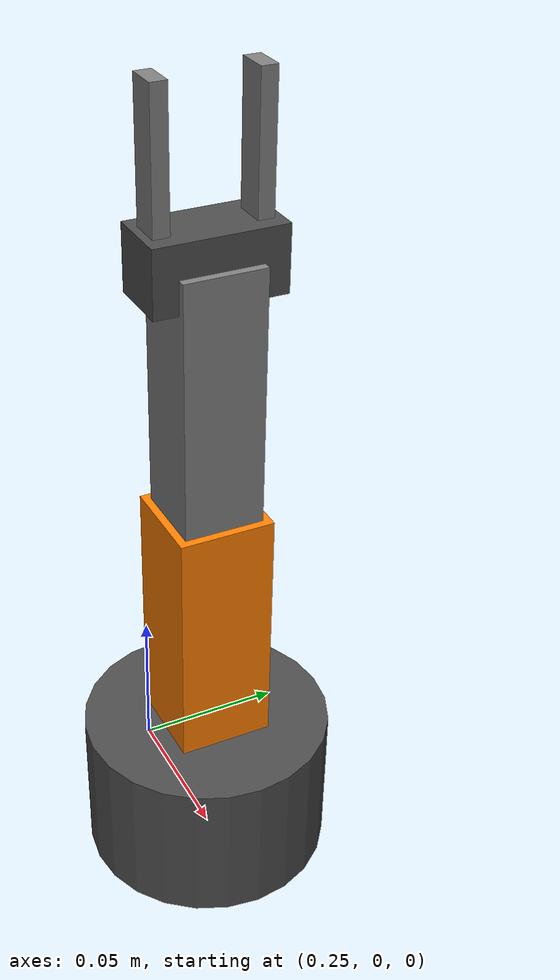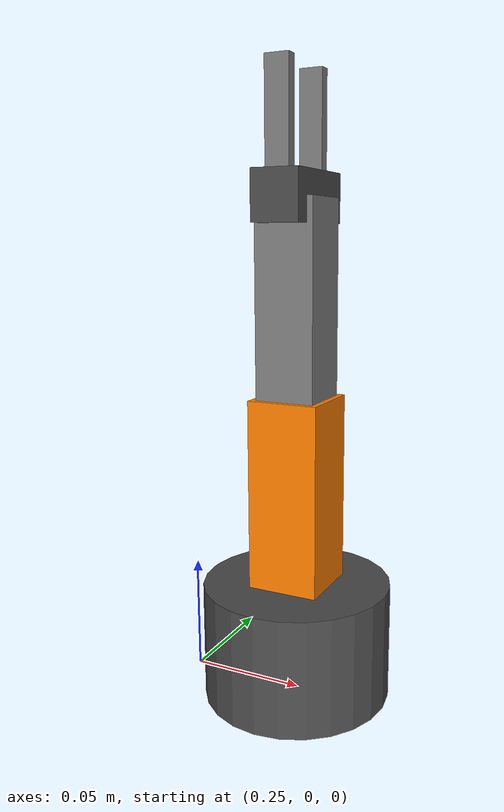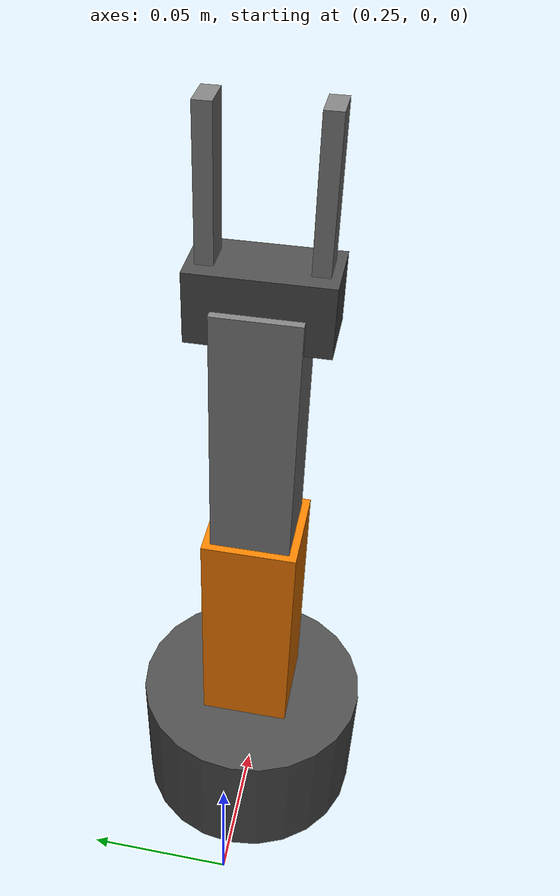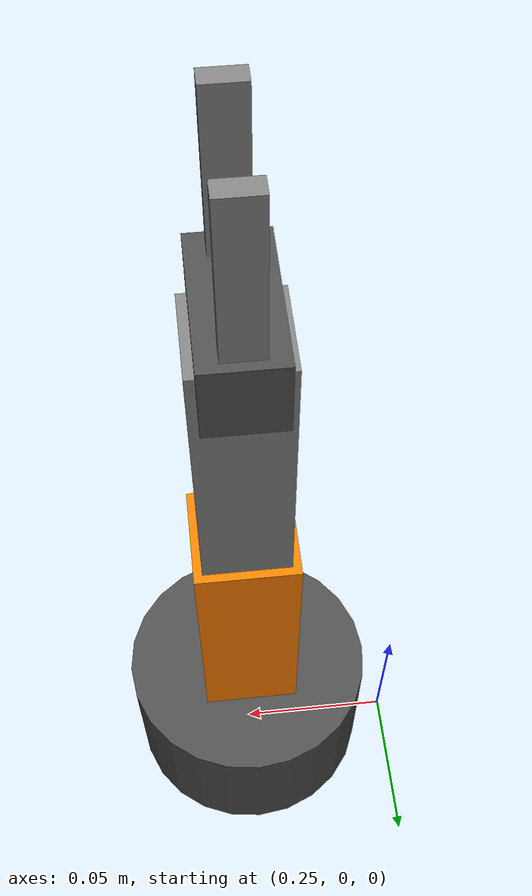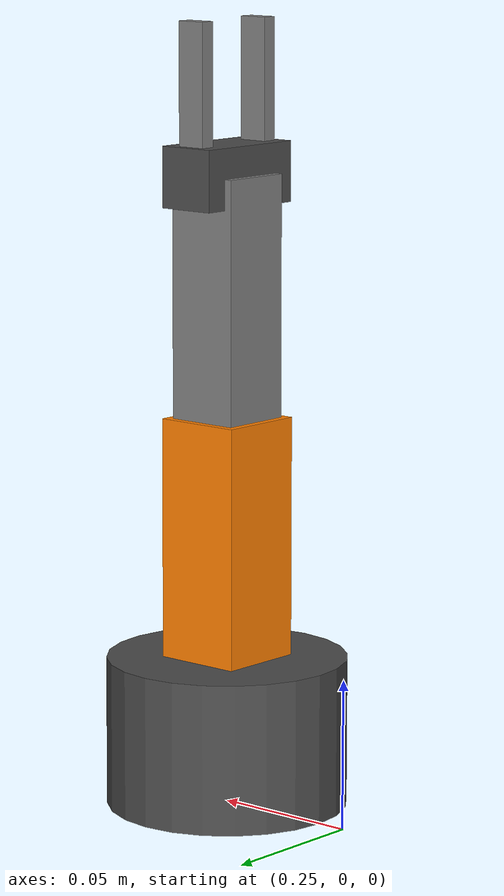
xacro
<?xml version="1.0"?>
<robot xmlns:xacro="http://www.ros.org/wiki/xacro" name="cyberbrick_arm">

  <!-- Properties -->
  <xacro:property name="base_height" value="0.05"/>
  <xacro:property name="base_radius" value="0.04"/>
  <xacro:property name="link1_length" value="0.08"/>
  <xacro:property name="link2_length" value="0.08"/>
  <xacro:property name="gripper_length" value="0.04"/>

  <!-- Materials -->
  <material name="orange">
    <color rgba="1.0 0.5 0.0 1.0"/>
  </material>
  <material name="grey">
    <color rgba="0.5 0.5 0.5 1.0"/>
  </material>
  <material name="dark_grey">
    <color rgba="0.3 0.3 0.3 1.0"/>
  </material>

  <!-- World link (fixed point) -->
  <link name="world"/>

  <!-- Base link -->
  <link name="arm_base_link">
    <visual>
      <geometry>
        <cylinder radius="${base_radius}" length="${base_height}"/>
      </geometry>
      <origin xyz="0 0 ${base_height/2}" rpy="0 0 0"/>
      <material name="dark_grey"/>
    </visual>
    <collision>
      <geometry>
        <cylinder radius="${base_radius}" length="${base_height}"/>
      </geometry>
      <origin xyz="0 0 ${base_height/2}" rpy="0 0 0"/>
    </collision>
    <inertial>
      <mass value="0.3"/>
      <inertia ixx="0.001" ixy="0" ixz="0" iyy="0.001" iyz="0" izz="0.001"/>
    </inertial>
  </link>

  <joint name="arm_base_joint" type="fixed">
    <parent link="world"/>
    <child link="arm_base_link"/>
    <origin xyz="0.3 0 0" rpy="0 0 0"/>
  </joint>

  <!-- Servo 1: Base rotation (yaw) -->
  <link name="arm_link1">
    <visual>
      <geometry>
        <box size="0.03 0.03 ${link1_length}"/>
      </geometry>
      <origin xyz="0 0 ${link1_length/2}" rpy="0 0 0"/>
      <material name="orange"/>
    </visual>
    <collision>
      <geometry>
        <box size="0.03 0.03 ${link1_length}"/>
      </geometry>
      <origin xyz="0 0 ${link1_length/2}" rpy="0 0 0"/>
    </collision>
    <inertial>
      <mass value="0.1"/>
      <inertia ixx="0.0001" ixy="0" ixz="0" iyy="0.0001" iyz="0" izz="0.0001"/>
    </inertial>
  </link>

  <joint name="arm_joint1" type="revolute">
    <parent link="arm_base_link"/>
    <child link="arm_link1"/>
    <origin xyz="0 0 ${base_height}" rpy="0 0 0"/>
    <axis xyz="0 0 1"/>
    <limit lower="${-pi/2}" upper="${pi/2}" effort="10" velocity="1.0"/>
  </joint>

  <!-- Servo 2: Shoulder (pitch) -->
  <link name="arm_link2">
    <visual>
      <geometry>
        <box size="0.025 0.025 ${link2_length}"/>
      </geometry>
      <origin xyz="0 0 ${link2_length/2}" rpy="0 0 0"/>
      <material name="grey"/>
    </visual>
    <collision>
      <geometry>
        <box size="0.025 0.025 ${link2_length}"/>
      </geometry>
      <origin xyz="0 0 ${link2_length/2}" rpy="0 0 0"/>
    </collision>
    <inertial>
      <mass value="0.08"/>
      <inertia ixx="0.00005" ixy="0" ixz="0" iyy="0.00005" iyz="0" izz="0.00005"/>
    </inertial>
  </link>

  <joint name="arm_joint2" type="revolute">
    <parent link="arm_link1"/>
    <child link="arm_link2"/>
    <origin xyz="0 0 ${link1_length}" rpy="0 0 0"/>
    <axis xyz="0 1 0"/>
    <limit lower="0" upper="${pi}" effort="10" velocity="1.0"/>
  </joint>

  <!-- Servo 3: Gripper -->
  <link name="gripper_base">
    <visual>
      <geometry>
        <box size="0.02 0.04 0.02"/>
      </geometry>
      <material name="dark_grey"/>
    </visual>
    <collision>
      <geometry>
        <box size="0.02 0.04 0.02"/>
      </geometry>
    </collision>
    <inertial>
      <mass value="0.03"/>
      <inertia ixx="0.00001" ixy="0" ixz="0" iyy="0.00001" iyz="0" izz="0.00001"/>
    </inertial>
  </link>

  <joint name="gripper_base_joint" type="fixed">
    <parent link="arm_link2"/>
    <child link="gripper_base"/>
    <origin xyz="0 0 ${link2_length}" rpy="0 0 0"/>
  </joint>

  <!-- Left finger -->
  <link name="left_finger">
    <visual>
      <geometry>
        <box size="0.01 0.005 ${gripper_length}"/>
      </geometry>
      <origin xyz="0 0 ${gripper_length/2}" rpy="0 0 0"/>
      <material name="grey"/>
    </visual>
    <collision>
      <geometry>
        <box size="0.01 0.005 ${gripper_length}"/>
      </geometry>
      <origin xyz="0 0 ${gripper_length/2}" rpy="0 0 0"/>
    </collision>
    <inertial>
      <mass value="0.01"/>
      <inertia ixx="0.000001" ixy="0" ixz="0" iyy="0.000001" iyz="0" izz="0.000001"/>
    </inertial>
  </link>

  <joint name="left_finger_joint" type="prismatic">
    <parent link="gripper_base"/>
    <child link="left_finger"/>
    <origin xyz="0 0.015 0.01" rpy="0 0 0"/>
    <axis xyz="0 1 0"/>
    <limit lower="0" upper="0.015" effort="10" velocity="0.5"/>
  </joint>

  <!-- Right finger -->
  <link name="right_finger">
    <visual>
      <geometry>
        <box size="0.01 0.005 ${gripper_length}"/>
      </geometry>
      <origin xyz="0 0 ${gripper_length/2}" rpy="0 0 0"/>
      <material name="grey"/>
    </visual>
    <collision>
      <geometry>
        <box size="0.01 0.005 ${gripper_length}"/>
      </geometry>
      <origin xyz="0 0 ${gripper_length/2}" rpy="0 0 0"/>
    </collision>
    <inertial>
      <mass value="0.01"/>
      <inertia ixx="0.000001" ixy="0" ixz="0" iyy="0.000001" iyz="0" izz="0.000001"/>
    </inertial>
  </link>

  <joint name="right_finger_joint" type="prismatic">
    <parent link="gripper_base"/>
    <child link="right_finger"/>
    <origin xyz="0 -0.015 0.01" rpy="0 0 0"/>
    <axis xyz="0 -1 0"/>
    <limit lower="0" upper="0.015" effort="10" velocity="0.5"/>
    <mimic joint="left_finger_joint"/>
  </joint>

  <!-- Gazebo control plugin -->
  <gazebo>
    <plugin name="gazebo_ros2_control" filename="libgazebo_ros2_control.so">
      <ros>
        <namespace>/arm</namespace>
      </ros>
      <parameters>$(find cyberbrick_description)/config/arm_controllers.yaml</parameters>
    </plugin>
  </gazebo>

  <!-- Transmission for joints -->
  <transmission name="arm_joint1_trans">
    <type>transmission_interface/SimpleTransmission</type>
    <joint name="arm_joint1">
      <hardwareInterface>hardware_interface/PositionJointInterface</hardwareInterface>
    </joint>
    <actuator name="arm_joint1_motor">
      <mechanicalReduction>1</mechanicalReduction>
    </actuator>
  </transmission>

  <transmission name="arm_joint2_trans">
    <type>transmission_interface/SimpleTransmission</type>
    <joint name="arm_joint2">
      <hardwareInterface>hardware_interface/PositionJointInterface</hardwareInterface>
    </joint>
    <actuator name="arm_joint2_motor">
      <mechanicalReduction>1</mechanicalReduction>
    </actuator>
  </transmission>

  <transmission name="gripper_trans">
    <type>transmission_interface/SimpleTransmission</type>
    <joint name="left_finger_joint">
      <hardwareInterface>hardware_interface/PositionJointInterface</hardwareInterface>
    </joint>
    <actuator name="gripper_motor">
      <mechanicalReduction>1</mechanicalReduction>
    </actuator>
  </transmission>

</robot>
